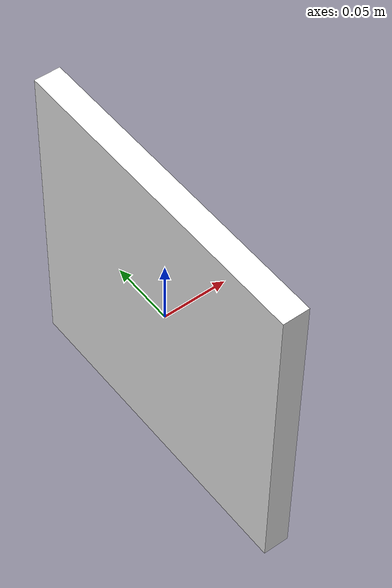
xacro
<?xml version="1.0"?>
<robot name="aruco_marker" xmlns:xacro="http://www.ros.org/wiki/xacro">
  <xacro:arg name="name" default="aruco_marker"/>
  <xacro:arg name="size" default="0.25"/>
  <xacro:arg name="thickness" default="0.02"/>
  <!-- Use the materials directory itself as the Gazebo URI so Ogre finds
       both materials.material AND the marker*.png textures it references. -->
  <xacro:arg name="material_uri" default="file://$(find rosbot_simulation)/materials/aruco/"/>
  <xacro:arg name="material_name" default="Aruco/Marker1"/>

  <link name="$(arg name)_link">
    <inertial>
      <mass value="0.2"/>
      <inertia ixx="0.0005" ixy="0" ixz="0" iyy="0.0005" iyz="0" izz="0.0005"/>
    </inertial>
    <visual>
      <geometry>
        <box size="$(arg thickness) $(arg size) $(arg size)"/>
      </geometry>
      <material name="white">
        <color rgba="1 1 1 1"/>
      </material>
    </visual>
    <collision>
      <geometry>
        <box size="$(arg thickness) $(arg size) $(arg size)"/>
      </geometry>
    </collision>
  </link>

  <!-- Gazebo override: apply the requested ArUco material so the panel shows
       the actual marker pattern (instead of plain white) for the camera to
       detect. -->
  <gazebo reference="$(arg name)_link">
    <visual>
      <material>
        <script>
          <uri>$(arg material_uri)</uri>
          <name>$(arg material_name)</name>
        </script>
      </material>
    </visual>
  </gazebo>
</robot>
